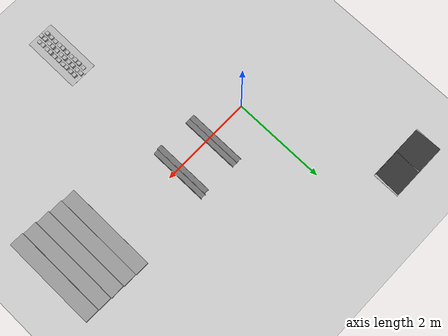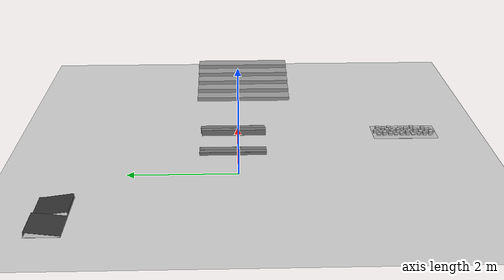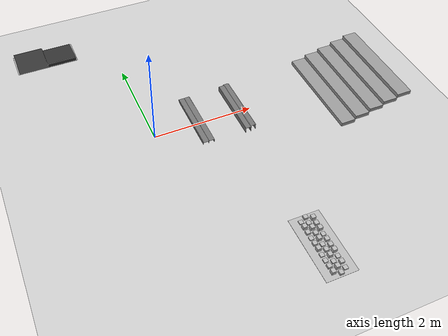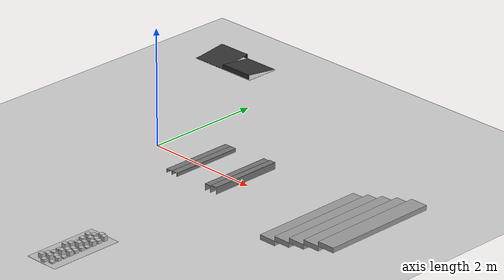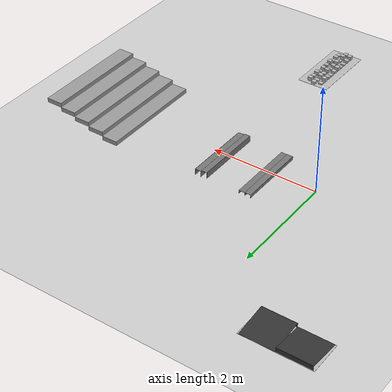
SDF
<sdf version="1.6">
 <world name="default">
  <light name="sun" type="directional">
   <pose>0 0 10 0 -0 0</pose>
   <diffuse>0.8 0.8 0.8 1</diffuse>
   <specular>0.1 0.1 0.1 1</specular>
   <attenuation>
    <range>1000</range>
    <constant>0.9</constant>
    <linear>0.01</linear>
    <quadratic>0.001</quadratic>
   </attenuation>
   <direction>-0.5 0.5 -1</direction>
  </light>
  <model name="ground_plane">
   <static>1</static>
   <link name="link">
    <collision name="collision">
     <geometry><plane><normal>0 0 1</normal><size>100 100</size></plane></geometry>
     <surface><friction><ode><mu>100</mu><mu2>50</mu2></ode></friction></surface>
    </collision>
    <visual name="visual">
     <cast_shadows>0</cast_shadows>
     <geometry><plane><normal>0 0 1</normal><size>100 100</size></plane></geometry>
     <material>
      <script><uri>file://media/materials/scripts/gazebo.material</uri><name>Gazebo/Grey</name></script>
     </material>
    </visual>
   </link>
  </model>
  <gravity>0 0 -9.8</gravity>
  <magnetic_field>6e-06 2.3e-05 -4.2e-05</magnetic_field>
  <atmosphere type="adiabatic"/>
  <physics name="default_physics" default="0" type="ode">
   <max_step_size>0.001</max_step_size>
   <real_time_factor>1</real_time_factor>
   <real_time_update_rate>1000</real_time_update_rate>
  </physics>
  <scene><ambient>0.4 0.4 0.4 1</ambient><background>0.7 0.7 0.7 1</background><shadows>1</shadows></scene>
  <spherical_coordinates>
   <surface_model>EARTH_WGS84</surface_model>
   <latitude_deg>0</latitude_deg>
   <longitude_deg>0</longitude_deg>
   <elevation>0</elevation>
   <heading_deg>0</heading_deg>
  </spherical_coordinates>
  <model name="frc2016_roughterrain">
   <static>1</static>
   <link name="link">
    <visual name="platform">
     <pose>0 0 0.08269 0 -0 0</pose>
     <geometry><box><size>1.27 0.5969 0.003175</size></box></geometry>
    </visual>
    <collision name="platform">
     <pose>0 0 0.08269 0 -0 0</pose>
     <geometry><box><size>1.27 0.5969 0.003175</size></box></geometry>
    </collision>
    <visual name="row1_block1_sm">
     <pose>0.51435 0.1143 0.09698 0 -0 0</pose>
     <geometry><box><size>0.0762 0.0762 0.0254</size></box></geometry>
    </visual>
    <collision name="row1_block1_sm">
     <pose>0.51435 0.1143 0.09698 0 -0 0</pose>
     <geometry><box><size>0.0762 0.0762 0.0254</size></box></geometry>
    </collision>
    <visual name="row1_block2_lg">
     <pose>0.40005 0.1143 0.12238 0 -0 0</pose>
     <geometry><box><size>0.0762 0.0762 0.0762</size></box></geometry>
    </visual>
    <collision name="row1_block2_lg">
     <pose>0.40005 0.1143 0.12238 0 -0 0</pose>
     <geometry><box><size>0.0762 0.0762 0.0762</size></box></geometry>
    </collision>
    <visual name="row1_block3_md">
     <pose>0.28575 0.1143 0.10968 0 -0 0</pose>
     <geometry><box><size>0.0762 0.0762 0.0508</size></box></geometry>
    </visual>
    <collision name="row1_block3_md">
     <pose>0.28575 0.1143 0.10968 0 -0 0</pose>
     <geometry><box><size>0.0762 0.0762 0.0508</size></box></geometry>
    </collision>
    <visual name="row1_block4_sm">
     <pose>0.17145 0.1143 0.09698 0 -0 0</pose>
     <geometry><box><size>0.0762 0.0762 0.0254</size></box></geometry>
    </visual>
    <collision name="row1_block4_sm">
     <pose>0.17145 0.1143 0.09698 0 -0 0</pose>
     <geometry><box><size>0.0762 0.0762 0.0254</size></box></geometry>
    </collision>
    <visual name="row1_block5_md">
     <pose>0.05715 0.1143 0.10968 0 -0 0</pose>
     <geometry><box><size>0.0762 0.0762 0.0508</size></box></geometry>
    </visual>
    <collision name="row1_block5_md">
     <pose>0.05715 0.1143 0.10968 0 -0 0</pose>
     <geometry><box><size>0.0762 0.0762 0.0508</size></box></geometry>
    </collision>
    <visual name="row1_block6_lg">
     <pose>-0.05715 0.1143 0.12238 0 -0 0</pose>
     <geometry><box><size>0.0762 0.0762 0.0762</size></box></geometry>
    </visual>
    <collision name="row1_block6_lg">
     <pose>-0.05715 0.1143 0.12238 0 -0 0</pose>
     <geometry><box><size>0.0762 0.0762 0.0762</size></box></geometry>
    </collision>
    <visual name="row1_block7_sm">
     <pose>-0.17145 0.1143 0.09698 0 -0 0</pose>
     <geometry><box><size>0.0762 0.0762 0.0254</size></box></geometry>
    </visual>
    <collision name="row1_block7_sm">
     <pose>-0.17145 0.1143 0.09698 0 -0 0</pose>
     <geometry><box><size>0.0762 0.0762 0.0254</size></box></geometry>
    </collision>
    <visual name="row1_block8_sm">
     <pose>-0.28575 0.1143 0.09698 0 -0 0</pose>
     <geometry><box><size>0.0762 0.0762 0.0254</size></box></geometry>
    </visual>
    <collision name="row1_block8_sm">
     <pose>-0.28575 0.1143 0.09698 0 -0 0</pose>
     <geometry><box><size>0.0762 0.0762 0.0254</size></box></geometry>
    </collision>
    <visual name="row1_block9_md">
     <pose>-0.40005 0.1143 0.10968 0 -0 0</pose>
     <geometry><box><size>0.0762 0.0762 0.0508</size></box></geometry>
    </visual>
    <collision name="row1_block9_md">
     <pose>-0.40005 0.1143 0.10968 0 -0 0</pose>
     <geometry><box><size>0.0762 0.0762 0.0508</size></box></geometry>
    </collision>
    <visual name="row1_block10_lg">
     <pose>-0.51435 0.1143 0.12238 0 -0 0</pose>
     <geometry><box><size>0.0762 0.0762 0.0762</size></box></geometry>
    </visual>
    <collision name="row1_block10_lg">
     <pose>-0.51435 0.1143 0.12238 0 -0 0</pose>
     <geometry><box><size>0.0762 0.0762 0.0762</size></box></geometry>
    </collision>
    <visual name="row2_block1_md">
     <pose>0.5715 0 0.10968 0 -0 0</pose>
     <geometry><box><size>0.0762 0.0762 0.0508</size></box></geometry>
    </visual>
    <collision name="row2_block1_md">
     <pose>0.5715 0 0.10968 0 -0 0</pose>
     <geometry><box><size>0.0762 0.0762 0.0508</size></box></geometry>
    </collision>
    <visual name="row2_block2_sm">
     <pose>0.4572 0 0.09698 0 -0 0</pose>
     <geometry><box><size>0.0762 0.0762 0.0254</size></box></geometry>
    </visual>
    <collision name="row2_block2_sm">
     <pose>0.4572 0 0.09698 0 -0 0</pose>
     <geometry><box><size>0.0762 0.0762 0.0254</size></box></geometry>
    </collision>
    <visual name="row2_block3_lg">
     <pose>0.3429 0 0.12238 0 -0 0</pose>
     <geometry><box><size>0.0762 0.0762 0.0762</size></box></geometry>
    </visual>
    <collision name="row2_block3_lg">
     <pose>0.3429 0 0.12238 0 -0 0</pose>
     <geometry><box><size>0.0762 0.0762 0.0762</size></box></geometry>
    </collision>
    <visual name="row2_block4_md">
     <pose>0.2286 0 0.10968 0 -0 0</pose>
     <geometry><box><size>0.0762 0.0762 0.0508</size></box></geometry>
    </visual>
    <collision name="row2_block4_md">
     <pose>0.2286 0 0.10968 0 -0 0</pose>
     <geometry><box><size>0.0762 0.0762 0.0508</size></box></geometry>
    </collision>
    <visual name="row2_block5_lg">
     <pose>0.1143 0 0.12238 0 -0 0</pose>
     <geometry><box><size>0.0762 0.0762 0.0762</size></box></geometry>
    </visual>
    <collision name="row2_block5_lg">
     <pose>0.1143 0 0.12238 0 -0 0</pose>
     <geometry><box><size>0.0762 0.0762 0.0762</size></box></geometry>
    </collision>
    <visual name="row2_block6_sm">
     <pose>0 0 0.09698 0 -0 0</pose>
     <geometry><box><size>0.0762 0.0762 0.0254</size></box></geometry>
    </visual>
    <collision name="row2_block6_sm">
     <pose>0 0 0.09698 0 -0 0</pose>
     <geometry><box><size>0.0762 0.0762 0.0254</size></box></geometry>
    </collision>
    <visual name="row2_block7_md">
     <pose>-0.1143 0 0.10968 0 -0 0</pose>
     <geometry><box><size>0.0762 0.0762 0.0508</size></box></geometry>
    </visual>
    <collision name="row2_block7_md">
     <pose>-0.1143 0 0.10968 0 -0 0</pose>
     <geometry><box><size>0.0762 0.0762 0.0508</size></box></geometry>
    </collision>
    <visual name="row2_block8_lg">
     <pose>-0.2286 0 0.12238 0 -0 0</pose>
     <geometry><box><size>0.0762 0.0762 0.0762</size></box></geometry>
    </visual>
    <collision name="row2_block8_lg">
     <pose>-0.2286 0 0.12238 0 -0 0</pose>
     <geometry><box><size>0.0762 0.0762 0.0762</size></box></geometry>
    </collision>
    <visual name="row2_block9_sm">
     <pose>-0.3429 0 0.09698 0 -0 0</pose>
     <geometry><box><size>0.0762 0.0762 0.0254</size></box></geometry>
    </visual>
    <collision name="row2_block9_sm">
     <pose>-0.3429 0 0.09698 0 -0 0</pose>
     <geometry><box><size>0.0762 0.0762 0.0254</size></box></geometry>
    </collision>
    <visual name="row2_block10_lg">
     <pose>-0.4572 0 0.12238 0 -0 0</pose>
     <geometry><box><size>0.0762 0.0762 0.0762</size></box></geometry>
    </visual>
    <collision name="row2_block10_lg">
     <pose>-0.4572 0 0.12238 0 -0 0</pose>
     <geometry><box><size>0.0762 0.0762 0.0762</size></box></geometry>
    </collision>
    <visual name="row2_block11_md">
     <pose>-0.5715 0 0.10968 0 -0 0</pose>
     <geometry><box><size>0.0762 0.0762 0.0508</size></box></geometry>
    </visual>
    <collision name="row2_block11_md">
     <pose>-0.5715 0 0.10968 0 -0 0</pose>
     <geometry><box><size>0.0762 0.0762 0.0508</size></box></geometry>
    </collision>
    <visual name="row3_block1_lg">
     <pose>0.51435 -0.1143 0.12238 0 -0 0</pose>
     <geometry><box><size>0.0762 0.0762 0.0762</size></box></geometry>
    </visual>
    <collision name="row3_block1_lg">
     <pose>0.51435 -0.1143 0.12238 0 -0 0</pose>
     <geometry><box><size>0.0762 0.0762 0.0762</size></box></geometry>
    </collision>
    <visual name="row3_block2_md">
     <pose>0.40005 -0.1143 0.10968 0 -0 0</pose>
     <geometry><box><size>0.0762 0.0762 0.0508</size></box></geometry>
    </visual>
    <collision name="row3_block2_md">
     <pose>0.40005 -0.1143 0.10968 0 -0 0</pose>
     <geometry><box><size>0.0762 0.0762 0.0508</size></box></geometry>
    </collision>
    <visual name="row3_block3_lg">
     <pose>0.28575 -0.1143 0.12238 0 -0 0</pose>
     <geometry><box><size>0.0762 0.0762 0.0762</size></box></geometry>
    </visual>
    <collision name="row3_block3_lg">
     <pose>0.28575 -0.1143 0.12238 0 -0 0</pose>
     <geometry><box><size>0.0762 0.0762 0.0762</size></box></geometry>
    </collision>
    <visual name="row3_block4_sm">
     <pose>0.17145 -0.1143 0.09698 0 -0 0</pose>
     <geometry><box><size>0.0762 0.0762 0.0254</size></box></geometry>
    </visual>
    <collision name="row3_block4_sm">
     <pose>0.17145 -0.1143 0.09698 0 -0 0</pose>
     <geometry><box><size>0.0762 0.0762 0.0254</size></box></geometry>
    </collision>
    <visual name="row3_block5_md">
     <pose>0.05715 -0.1143 0.10968 0 -0 0</pose>
     <geometry><box><size>0.0762 0.0762 0.0508</size></box></geometry>
    </visual>
    <collision name="row3_block5_md">
     <pose>0.05715 -0.1143 0.10968 0 -0 0</pose>
     <geometry><box><size>0.0762 0.0762 0.0508</size></box></geometry>
    </collision>
    <visual name="row3_block6_md">
     <pose>-0.05715 -0.1143 0.10968 0 -0 0</pose>
     <geometry><box><size>0.0762 0.0762 0.0508</size></box></geometry>
    </visual>
    <collision name="row3_block6_md">
     <pose>-0.05715 -0.1143 0.10968 0 -0 0</pose>
     <geometry><box><size>0.0762 0.0762 0.0508</size></box></geometry>
    </collision>
    <visual name="row3_block7_lg">
     <pose>-0.17145 -0.1143 0.12238 0 -0 0</pose>
     <geometry><box><size>0.0762 0.0762 0.0762</size></box></geometry>
    </visual>
    <collision name="row3_block7_lg">
     <pose>-0.17145 -0.1143 0.12238 0 -0 0</pose>
     <geometry><box><size>0.0762 0.0762 0.0762</size></box></geometry>
    </collision>
    <visual name="row3_block8_sm">
     <pose>-0.28575 -0.1143 0.09698 0 -0 0</pose>
     <geometry><box><size>0.0762 0.0762 0.0254</size></box></geometry>
    </visual>
    <collision name="row3_block8_sm">
     <pose>-0.28575 -0.1143 0.09698 0 -0 0</pose>
     <geometry><box><size>0.0762 0.0762 0.0254</size></box></geometry>
    </collision>
    <visual name="row3_block9_md">
     <pose>-0.40005 -0.1143 0.10968 0 -0 0</pose>
     <geometry><box><size>0.0762 0.0762 0.0508</size></box></geometry>
    </visual>
    <collision name="row3_block9_md">
     <pose>-0.40005 -0.1143 0.10968 0 -0 0</pose>
     <geometry><box><size>0.0762 0.0762 0.0508</size></box></geometry>
    </collision>
    <visual name="row3_block10_sm">
     <pose>-0.51435 -0.1143 0.09698 0 -0 0</pose>
     <geometry><box><size>0.0762 0.0762 0.0254</size></box></geometry>
    </visual>
    <collision name="row3_block10_sm">
     <pose>-0.51435 -0.1143 0.09698 0 -0 0</pose>
     <geometry><box><size>0.0762 0.0762 0.0254</size></box></geometry>
    </collision>
   </link>
   <pose>1.70324 -3.32243 -0.086398 0 -0 1.56747</pose>
  </model>
  <model name="frc2016_ramparts">
   <static>1</static>
   <link name="link">
    <visual name="platform">
     <pose>0 0 0.06967 0 -0 0</pose>
     <geometry><box><size>1.27 0.5969 0.003175</size></box></geometry>
    </visual>
    <collision name="platform">
     <pose>0 0 0.06967 0 -0 0</pose>
     <geometry><box><size>1.27 0.5969 0.003175</size></box></geometry>
    </collision>
    <visual name="ramp1">
     <pose>0.30472 0.00588 0.1109 -0.13 0 0</pose>
     <geometry><box><size>0.60957 0.588891 0.00462</size></box></geometry>
     <material><ambient>0.2 0.2 0.2 1</ambient><diffuse>0.2 0.2 0.2 1</diffuse></material>
    </visual>
    <collision name="ramp1">
     <pose>0.30472 0.00588 0.1109 -0.13 0 0</pose>
     <geometry><box><size>0.60957 0.588891 0.00462</size></box></geometry>
    </collision>
    <visual name="up1">
     <pose>0.30472 -0.28806 0.11072 0 -0 0</pose>
     <geometry><box><size>0.60957 0.00462 0.07872</size></box></geometry>
     <material><ambient>0.2 0.2 0.2 1</ambient><diffuse>0.2 0.2 0.2 1</diffuse></material>
    </visual>
    <collision name="up1">
     <pose>0.30472 -0.28806 0.11072 0 -0 0</pose>
     <geometry><box><size>0.60957 0.00462 0.07872</size></box></geometry>
    </collision>
    <visual name="ramp2">
     <pose>-0.30472 -0.00619 0.1109 0.13 -0 0</pose>
     <geometry><box><size>0.60957 0.588891 0.00462</size></box></geometry>
     <material><ambient>0.2 0.2 0.2 1</ambient><diffuse>0.2 0.2 0.2 1</diffuse></material>
    </visual>
    <collision name="ramp2">
     <pose>-0.30472 -0.00619 0.1109 0.13 -0 0</pose>
     <geometry><box><size>0.60957 0.588891 0.00462</size></box></geometry>
    </collision>
    <visual name="up2">
     <pose>-0.30472 0.28806 0.11072 0 -0 0</pose>
     <geometry><box><size>0.60957 0.00462 0.07872</size></box></geometry>
     <material><ambient>0.2 0.2 0.2 1</ambient><diffuse>0.2 0.2 0.2 1</diffuse></material>
    </visual>
    <collision name="up2">
     <pose>-0.30472 0.28806 0.11072 0 -0 0</pose>
     <geometry><box><size>0.60957 0.00462 0.07872</size></box></geometry>
    </collision>
   </link>
   <pose>-1.39394 3.08885 -0.070276 0 -0 0</pose>
  </model>
  <model name="Untitled1111">
   <pose>4.17099 -0.139386 0 0 -0 1.5708</pose>
   <link name="Stairs_1">
    <visual name="Stairs_1_Visual_0">
     <pose>0 0.6 0.04 0 -0 0</pose>
     <geometry><box><size>2 0.3 0.08</size></box></geometry>
     <material>
      <script><uri>file://media/materials/scripts/gazebo.material</uri><name>Gazebo/Grey</name></script>
      <ambient>1 1 1 1</ambient>
     </material>
     <meta><layer>0</layer></meta>
    </visual>
    <collision name="Stairs_1_Collision_0">
     <geometry><box><size>2 0.3 0.08</size></box></geometry>
     <pose>0 0.6 0.04 0 -0 0</pose>
    </collision>
    <visual name="Stairs_1_Visual_1">
     <pose>0 0.3 0.12 0 -0 0</pose>
     <geometry><box><size>2 0.3 0.08</size></box></geometry>
     <material>
      <script><uri>file://media/materials/scripts/gazebo.material</uri><name>Gazebo/Grey</name></script>
      <ambient>1 1 1 1</ambient>
     </material>
     <meta><layer>0</layer></meta>
    </visual>
    <collision name="Stairs_1_Collision_1">
     <geometry><box><size>2 0.3 0.08</size></box></geometry>
     <pose>0 0.3 0.12 0 -0 0</pose>
    </collision>
    <visual name="Stairs_1_Visual_2">
     <pose>0 0 0.2 0 -0 0</pose>
     <geometry><box><size>2 0.3 0.08</size></box></geometry>
     <material>
      <script><uri>file://media/materials/scripts/gazebo.material</uri><name>Gazebo/Grey</name></script>
      <ambient>1 1 1 1</ambient>
     </material>
     <meta><layer>0</layer></meta>
    </visual>
    <collision name="Stairs_1_Collision_2">
     <geometry><box><size>2 0.3 0.08</size></box></geometry>
     <pose>0 0 0.2 0 -0 0</pose>
    </collision>
    <visual name="Stairs_1_Visual_3">
     <pose>0 -0.3 0.28 0 -0 0</pose>
     <geometry><box><size>2 0.3 0.08</size></box></geometry>
     <material>
      <script><uri>file://media/materials/scripts/gazebo.material</uri><name>Gazebo/Grey</name></script>
      <ambient>1 1 1 1</ambient>
     </material>
     <meta><layer>0</layer></meta>
    </visual>
    <collision name="Stairs_1_Collision_3">
     <geometry><box><size>2 0.3 0.08</size></box></geometry>
     <pose>0 -0.3 0.28 0 -0 0</pose>
    </collision>
    <visual name="Stairs_1_Visual_4">
     <pose>0 -0.6 0.36 0 -0 0</pose>
     <geometry><box><size>2 0.3 0.08</size></box></geometry>
     <material>
      <script><uri>file://media/materials/scripts/gazebo.material</uri><name>Gazebo/Grey</name></script>
      <ambient>1 1 1 1</ambient>
     </material>
     <meta><layer>0</layer></meta>
    </visual>
    <collision name="Stairs_1_Collision_4">
     <geometry><box><size>2 0.3 0.08</size></box></geometry>
     <pose>0 -0.6 0.36 0 -0 0</pose>
    </collision>
   </link>
   <static>1</static>
  </model>
  <model name="frc2016_rockwall">
   <static>1</static>
   <link name="link">
    <inertial>
     <mass>10</mass>
     <pose>0 0 0.08974 0 -0 0</pose>
     <inertia><ixx>0.327091</ixx><ixy>0</ixy><ixz>0</ixz><iyy>1.37417</iyy><iyz>0</iyz><izz>1.64109</izz></inertia>
    </inertial>
    <visual name="platform">
     <pose>0 0 0.06432 0 -0 0</pose>
     <geometry><box><size>1.27 0.5969 0.003175</size></box></geometry>
    </visual>
    <collision name="platform">
     <pose>0 0 0.06432 0 -0 0</pose>
     <geometry><box><size>1.27 0.5969 0.003175</size></box></geometry>
    </collision>
    <visual name="up1">
     <pose>0 0.05166 0.12537 0 -0 0</pose>
     <geometry><box><size>1.27 0.00462 0.11892</size></box></geometry>
     <material><ambient>0.46 0.46 0.46 1</ambient><diffuse>0.46 0.46 0.46 1</diffuse></material>
    </visual>
    <collision name="up1">
     <pose>0 0.05166 0.12537 0 -0 0</pose>
     <geometry><box><size>1.27 0.00462 0.11892</size></box></geometry>
    </collision>
    <visual name="up2">
     <pose>0 -0.05801 0.12537 0 -0 0</pose>
     <geometry><box><size>1.27 0.00462 0.11892</size></box></geometry>
     <material><ambient>0.46 0.46 0.46 1</ambient><diffuse>0.46 0.46 0.46 1</diffuse></material>
    </visual>
    <collision name="up2">
     <pose>0 -0.05801 0.12537 0 -0 0</pose>
     <geometry><box><size>1.27 0.00462 0.11892</size></box></geometry>
    </collision>
    <visual name="top">
     <pose>0 -0.00249 0.18252 0 -0 0</pose>
     <geometry><box><size>1.27 0.1143 0.00462</size></box></geometry>
     <material><ambient>0.46 0.46 0.46 1</ambient><diffuse>0.46 0.46 0.46 1</diffuse></material>
    </visual>
    <collision name="top">
     <pose>0 -0.00249 0.18252 0 -0 0</pose>
     <geometry><box><size>1.27 0.1143 0.00462</size></box></geometry>
    </collision>
   </link>
   <pose>1.81402 0.099797 -0.077403 0 0 -1.5708</pose>
  </model>
  <model name="frc2016_rockwall_clone">
   <static>1</static>
   <link name="link">
    <inertial>
     <mass>10</mass>
     <pose>0 0 0.08974 0 -0 0</pose>
     <inertia><ixx>0.327091</ixx><ixy>0</ixy><ixz>0</ixz><iyy>1.37417</iyy><iyz>0</iyz><izz>1.64109</izz></inertia>
    </inertial>
    <visual name="platform">
     <pose>0 0 0.06432 0 -0 0</pose>
     <geometry><box><size>1.27 0.5969 0.003175</size></box></geometry>
    </visual>
    <collision name="platform">
     <pose>0 0 0.06432 0 -0 0</pose>
     <geometry><box><size>1.27 0.5969 0.003175</size></box></geometry>
    </collision>
    <visual name="up1">
     <pose>0 0.05166 0.12537 0 -0 0</pose>
     <geometry><box><size>1.27 0.00462 0.11892</size></box></geometry>
     <material><ambient>0.46 0.46 0.46 1</ambient><diffuse>0.46 0.46 0.46 1</diffuse></material>
    </visual>
    <collision name="up1">
     <pose>0 0.05166 0.12537 0 -0 0</pose>
     <geometry><box><size>1.27 0.00462 0.11892</size></box></geometry>
    </collision>
    <visual name="up2">
     <pose>0 -0.05801 0.12537 0 -0 0</pose>
     <geometry><box><size>1.27 0.00462 0.11892</size></box></geometry>
     <material><ambient>0.46 0.46 0.46 1</ambient><diffuse>0.46 0.46 0.46 1</diffuse></material>
    </visual>
    <collision name="up2">
     <pose>0 -0.05801 0.12537 0 -0 0</pose>
     <geometry><box><size>1.27 0.00462 0.11892</size></box></geometry>
    </collision>
    <visual name="top">
     <pose>0 -0.00249 0.18252 0 -0 0</pose>
     <geometry><box><size>1.27 0.1143 0.00462</size></box></geometry>
     <material><ambient>0.46 0.46 0.46 1</ambient><diffuse>0.46 0.46 0.46 1</diffuse></material>
    </visual>
    <collision name="top">
     <pose>0 -0.00249 0.18252 0 -0 0</pose>
     <geometry><box><size>1.27 0.1143 0.00462</size></box></geometry>
    </collision>
   </link>
   <pose>1.70829 0.077624 -0.077403 0 0 -1.5708</pose>
  </model>
  <model name="frc2016_rockwall_clone_0">
   <static>1</static>
   <link name="link">
    <inertial>
     <mass>10</mass>
     <pose>0 0 0.08974 0 -0 0</pose>
     <inertia><ixx>0.327091</ixx><ixy>0</ixy><ixz>0</ixz><iyy>1.37417</iyy><iyz>0</iyz><izz>1.64109</izz></inertia>
    </inertial>
    <visual name="platform">
     <pose>0 0 0.06432 0 -0 0</pose>
     <geometry><box><size>1.27 0.5969 0.003175</size></box></geometry>
    </visual>
    <collision name="platform">
     <pose>0 0 0.06432 0 -0 0</pose>
     <geometry><box><size>1.27 0.5969 0.003175</size></box></geometry>
    </collision>
    <visual name="up1">
     <pose>0 0.05166 0.12537 0 -0 0</pose>
     <geometry><box><size>1.27 0.00462 0.11892</size></box></geometry>
     <material><ambient>0.46 0.46 0.46 1</ambient><diffuse>0.46 0.46 0.46 1</diffuse></material>
    </visual>
    <collision name="up1">
     <pose>0 0.05166 0.12537 0 -0 0</pose>
     <geometry><box><size>1.27 0.00462 0.11892</size></box></geometry>
    </collision>
    <visual name="up2">
     <pose>0 -0.05801 0.12537 0 -0 0</pose>
     <geometry><box><size>1.27 0.00462 0.11892</size></box></geometry>
     <material><ambient>0.46 0.46 0.46 1</ambient><diffuse>0.46 0.46 0.46 1</diffuse></material>
    </visual>
    <collision name="up2">
     <pose>0 -0.05801 0.12537 0 -0 0</pose>
     <geometry><box><size>1.27 0.00462 0.11892</size></box></geometry>
    </collision>
    <visual name="top">
     <pose>0 -0.00249 0.18252 0 -0 0</pose>
     <geometry><box><size>1.27 0.1143 0.00462</size></box></geometry>
     <material><ambient>0.46 0.46 0.46 1</ambient><diffuse>0.46 0.46 0.46 1</diffuse></material>
    </visual>
    <collision name="top">
     <pose>0 -0.00249 0.18252 0 -0 0</pose>
     <geometry><box><size>1.27 0.1143 0.00462</size></box></geometry>
    </collision>
   </link>
   <pose>0.948623 0.099583 -0.132648 0 0 -1.5708</pose>
  </model>
  <model name="frc2016_rockwall_clone_0_clone">
   <static>1</static>
   <link name="link">
    <inertial>
     <mass>10</mass>
     <pose>0 0 0.08974 0 -0 0</pose>
     <inertia><ixx>0.327091</ixx><ixy>0</ixy><ixz>0</ixz><iyy>1.37417</iyy><iyz>0</iyz><izz>1.64109</izz></inertia>
    </inertial>
    <visual name="platform">
     <pose>0 0 0.06432 0 -0 0</pose>
     <geometry><box><size>1.27 0.5969 0.003175</size></box></geometry>
    </visual>
    <collision name="platform">
     <pose>0 0 0.06432 0 -0 0</pose>
     <geometry><box><size>1.27 0.5969 0.003175</size></box></geometry>
    </collision>
    <visual name="up1">
     <pose>0 0.05166 0.12537 0 -0 0</pose>
     <geometry><box><size>1.27 0.00462 0.11892</size></box></geometry>
     <material><ambient>0.46 0.46 0.46 1</ambient><diffuse>0.46 0.46 0.46 1</diffuse></material>
    </visual>
    <collision name="up1">
     <pose>0 0.05166 0.12537 0 -0 0</pose>
     <geometry><box><size>1.27 0.00462 0.11892</size></box></geometry>
    </collision>
    <visual name="up2">
     <pose>0 -0.05801 0.12537 0 -0 0</pose>
     <geometry><box><size>1.27 0.00462 0.11892</size></box></geometry>
     <material><ambient>0.46 0.46 0.46 1</ambient><diffuse>0.46 0.46 0.46 1</diffuse></material>
    </visual>
    <collision name="up2">
     <pose>0 -0.05801 0.12537 0 -0 0</pose>
     <geometry><box><size>1.27 0.00462 0.11892</size></box></geometry>
    </collision>
    <visual name="top">
     <pose>0 -0.00249 0.18252 0 -0 0</pose>
     <geometry><box><size>1.27 0.1143 0.00462</size></box></geometry>
     <material><ambient>0.46 0.46 0.46 1</ambient><diffuse>0.46 0.46 0.46 1</diffuse></material>
    </visual>
    <collision name="top">
     <pose>0 -0.00249 0.18252 0 -0 0</pose>
     <geometry><box><size>1.27 0.1143 0.00462</size></box></geometry>
    </collision>
   </link>
   <pose>0.837775 0.097219 -0.132648 0 0 -1.5708</pose>
  </model>
 </world>
</sdf>
